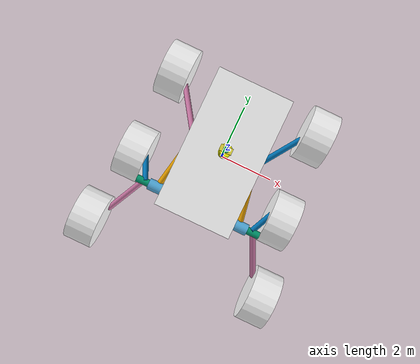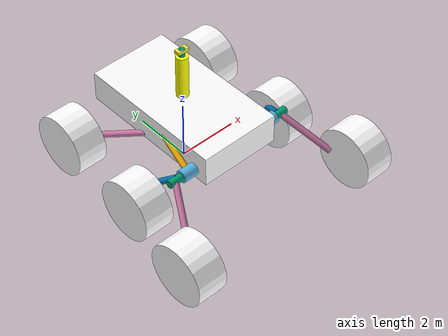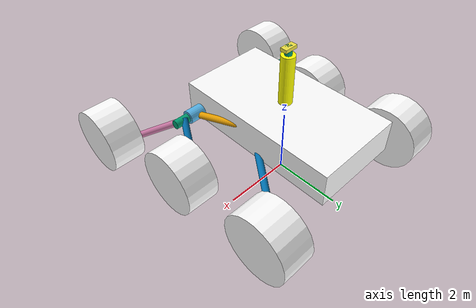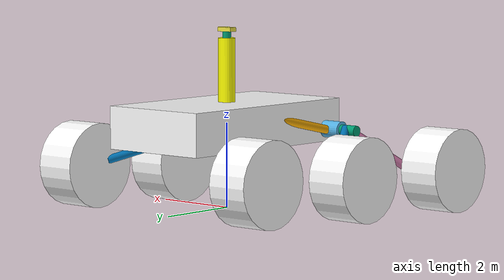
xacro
<?xml version="1.0"?>
<robot name="curiosity_rover" xmlns:xacro="http://www.ros.org/wiki/xacro">

<xacro:property name="ll" value="link_left"/>
<xacro:property name="lr" value="link_right"/>
<xacro:property name="roboname" value="curiosity_rover"/>

<xacro:property name="base_length" value="2.7"/>
<xacro:property name="base_width" value="5"/>
<xacro:property name="base_height" value="1"/>

<xacro:property name="base_x" value="0"/>
<xacro:property name="base_y" value="0"/>
<xacro:property name="base_z" value="2"/>

<!--Base link-->
<link name="base_link">
    <visual>
      <geometry>
        <box size="${base_length} ${base_width} ${base_height}"/>
      </geometry>
      <origin xyz="${base_x} ${base_y} ${base_z}"/>
      <material name="white">
      	<color rgba="1 1 1 1"/>
      </material>
    </visual>
</link>
<!-- Camera_base-to-Base -->
<link name="link_camera_base">
	<visual>
		<geometry>
			<cylinder length="2" radius=".2"/>
		</geometry>
		<origin xyz="0 0 0" rpy="0 0 0"/>
		<material name="white">
			<color rgba="1 1 0 1"/>
		</material>

	</visual>
</link>
<joint name="joint_camera_base" type="fixed">
	<parent link="base_link"/>
	<child link="link_camera_base"/>
	<origin xyz="0 0 ${base_height + base_z}" />
</joint>

<!-- Camera_base-to-Camera_holder -->
<link name="link_camera_holder">
	<visual>
		<geometry>
			<cylinder length=".5" radius=".1"/>
		</geometry>
		<origin xyz="0 0 0" rpy="0 0 0"/>
	</visual>
</link>
<joint name="joint_camera_holder" type="continuous">
	<parent link="link_camera_base"/>
	<child link="link_camera_holder"/>
	<origin xyz="0 0 1"/>
	<axis xyz="0 0 1"/>
</joint>

<!-- Camer_holder-to-Camera -->
<link name="link_camera">
	<visual>
		<geometry>
			<box size=".4 .2 .1"/>
		</geometry>
		<origin xyz="0 0 0" rpy="0 0 0"/>
	</visual>
</link>
<joint name="joint_camera" type="fixed">
	<parent link="link_camera_holder"/>
	<child link="link_camera"/>
	<origin xyz="0 0 .2"/>
</joint>

<!-- base-to-right wheel -->
<link name="${lr}_front">
	<visual>
		<geometry>
			<cylinder length="3" radius=".1"/>
		</geometry>
		<origin xyz=".1 0.5 -${base_height/2}" rpy="1.3 0 -0.6"/>
	</visual>
</link>
<joint name="joint_${lr}_front" type="fixed">
	<parent link="base_link"/>
	<child link="${lr}_front"/>
	<origin xyz="${base_length/2} 0 ${base_z}"/>
</joint>

<!-- wheel -->
<link name="wheel">
	<visual>
		<geometry>
			<cylinder length="1" radius="1"/>
		</geometry>
		<origin xyz="0 0 0" rpy="0 1.57 0"/>
		<material name="white"/>
	</visual>
</link>
<joint name="joint_wheel" type="fixed">
	<parent link="${lr}_front"/>
	<child link="wheel"/>
	<origin xyz="${base_length/2} ${base_width/2-.5} -1"/>
</joint>

<!-- base-to-right wheel -->
<link name="${ll}_front">
	<visual>
		<geometry>
			<cylinder length="3" radius=".1"/>
		</geometry>
		<origin xyz="-.1 .5 -${base_height/2}" rpy="1.3 0 0.6"/>
	</visual>
</link>
<joint name="joint_${ll}_front" type="fixed">
	<parent link="base_link"/>
	<child link="${ll}_front"/>
	<origin xyz="-${base_length/2} 0 ${base_z}"/>
</joint>

<!-- wheel -->
<link name="${ll}_front_wheel">
	<visual>
		<geometry>
			<cylinder length="1" radius="1"/>
		</geometry>
		<origin xyz="0 0 0" rpy="0 -1.57 0"/>
		<material name="white"/>
	</visual>
</link>
<joint name="${ll}_joint_wheel" type="continuous">
	<parent link="${ll}_front"/>
	<child link="${ll}_front_wheel"/>
	<origin xyz="-${base_length/2} ${base_width/2-.5} -1"/>
	<axis xyz="1 0 0"/>
</joint>

<!-- base-to-back wheel -->
<xacro:macro name="back_wheel" params="prefix reflect">
	<link name="${prefix}_back">
		<visual>
			<geometry>
				<cylinder length="2" radius=".1"/>
			</geometry>
			<origin xyz="0 0 0" rpy="1.8 0 ${reflect * 0.2}"/>
		</visual>
	</link>

	<joint name="joint_${prefix}_back" type="fixed">
		<parent link="base_link"/>
		<child link="${prefix}_back"/>
		<origin xyz="${reflect*(base_length/2)} -1 ${base_z}"/>
	</joint>

	<link name="${prefix}_back_holder">
		<visual>
			<geometry>
				<cylinder length="1" radius=".2"/>
			</geometry>
			<origin xyz="0 0 0" rpy="0 1.57 0"/>
		</visual>
	</link>

	<joint name="joint_${prefix}_back_holder" type="fixed">
		<parent link="base_link"/>
		<child link="${prefix}_back_holder"/>
		<origin xyz="${reflect*(base_length/2)} -2 ${base_z-.2}"/>
	</joint>

	<link name="${prefix}_back_rot">
		<visual>
			<geometry>
				<cylinder length="1.5" radius=".13"/>
			</geometry>
			<origin xyz="0 0 0" rpy="0 1.57 0"/>
		</visual>
	</link>

	<joint name="joint_${prefix}_back_rot" type="continuous">
		<parent link="${prefix}_back_holder"/>
		<child link="${prefix}_back_rot"/>
		<origin xyz="${reflect *0.2} 0 0"/>
		<axis xyz="1 0 0"/>
	</joint>

	<link name="${prefix}_back_pin">
		<visual>
			<geometry>
				<sphere radius="0.14"/>
			</geometry>
			<origin xyz="0 0 0" rpy="0 1.57 0"/>
		</visual>
	</link>

	<joint name="joint_${prefix}_back_pin" type="fixed">
		<parent link="${prefix}_back_rot"/>
		<child link="${prefix}_back_pin"/>
		<origin xyz="${reflect *0.2} 0 0"/>
	</joint>

	<link name="${prefix}_mid_bar">
		<visual>
			<geometry>
				<cylinder length="1.3" radius=".1"/>
			</geometry>
			<origin xyz="${reflect*0.2} 0.5 -0.3" rpy="1 0 ${reflect*-1*.5}"/>
		</visual>
	</link>

	<joint name="joint_${prefix}_mid_bar" type="fixed">
		<parent link="${prefix}_back_rot"/>
		<child link="${prefix}_mid_bar"/>
		<origin xyz="${reflect *0.5} 0 0"/>
	</joint>

<!-- middle wheel -->
<link name="${prefix}_mid_wheel">
	<visual>
		<geometry>
			<cylinder length="1" radius="1"/>
		</geometry>
		<origin xyz="0 0 0" rpy="0 -1.57 0"/>
		<material name="white"/>
	</visual>
</link>
<joint name="${prefix}_mid_wheel" type="continuous">
	<parent link="${prefix}_mid_bar"/>
	<child link="${prefix}_mid_wheel"/>
	<origin xyz="${reflect*.8} .8 -1"/>
	<axis xyz="1 0 0"/>
</joint>

<link name="${prefix}_back_bar">
		<visual>
			<geometry>
				<cylinder length="2" radius=".1"/>
			</geometry>
			<origin xyz="${reflect*0.1} -0.7 -0.5" rpy="-1 0 ${reflect*.5}"/>
		</visual>
	</link>

	<joint name="joint_${prefix}_back_bar" type="fixed">
		<parent link="${prefix}_back_rot"/>
		<child link="${prefix}_back_bar"/>
		<origin xyz="${reflect *0.8} 0 0"/>
	</joint>

	<!-- back wheel -->
<link name="${prefix}_back_wheel">
	<visual>
		<geometry>
			<cylinder length="1" radius="1"/>
		</geometry>
		<origin xyz="0 0 0" rpy="0 -1.57 0"/>
		<material name="white"/>
	</visual>
</link>
<joint name="${prefix}_back_wheel" type="continuous">
	<parent link="${prefix}_back_bar"/>
	<child link="${prefix}_back_wheel"/>
	<origin xyz="${reflect* 1.0} -2 -1"/>
	<axis xyz="1 0 0"/>
</joint>

</xacro:macro>

<xacro:back_wheel prefix="right" reflect="1"/>
<xacro:back_wheel prefix="left" reflect="-1"/>
</robot>
